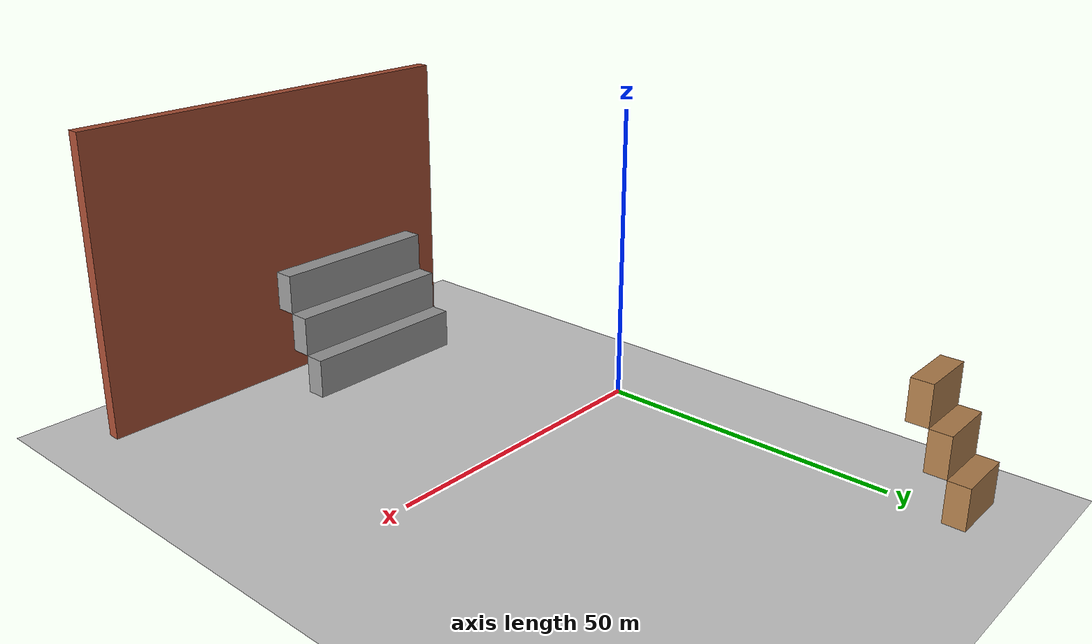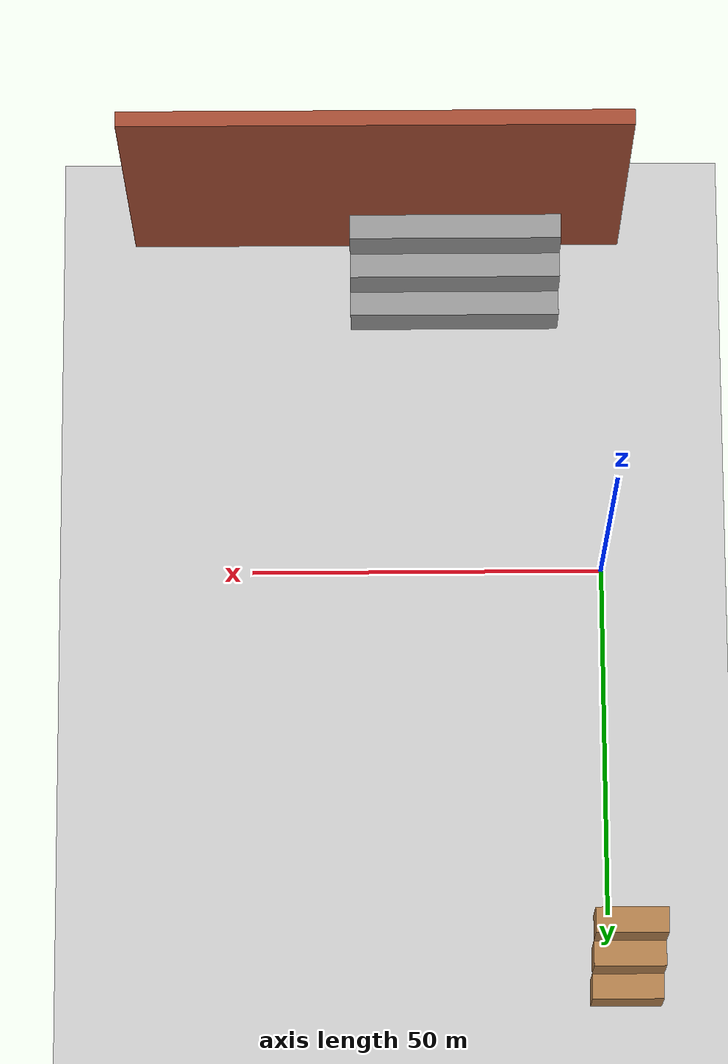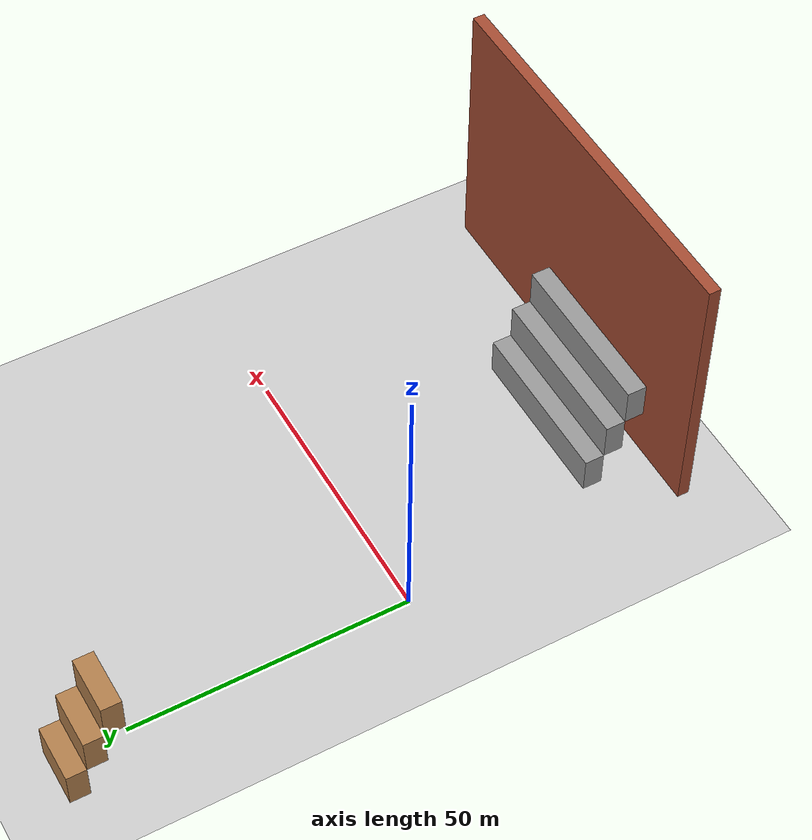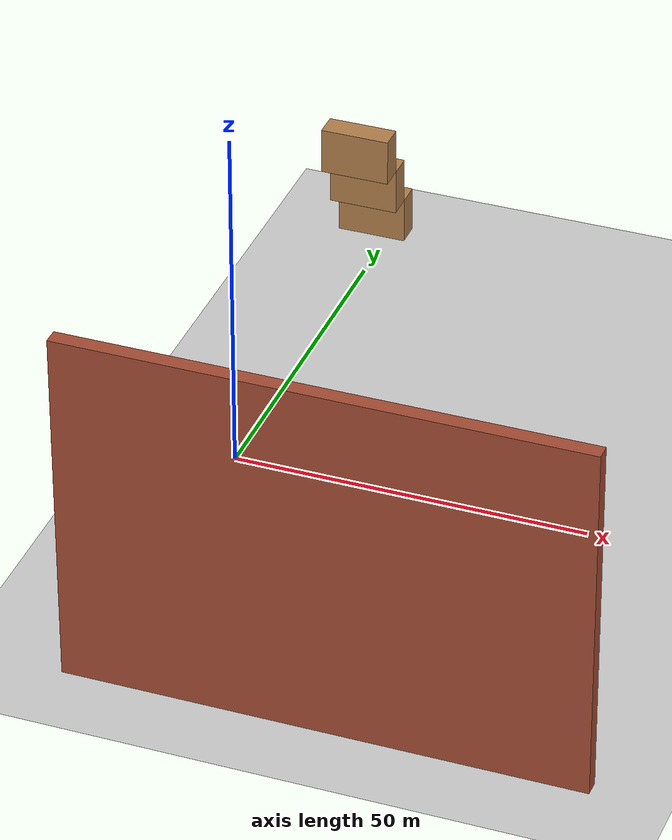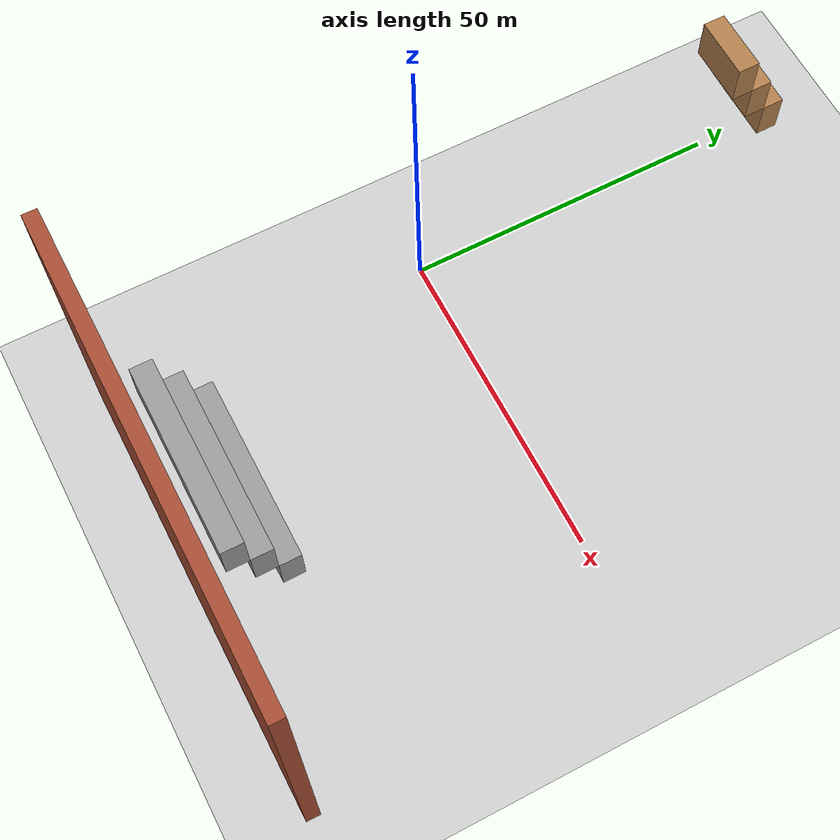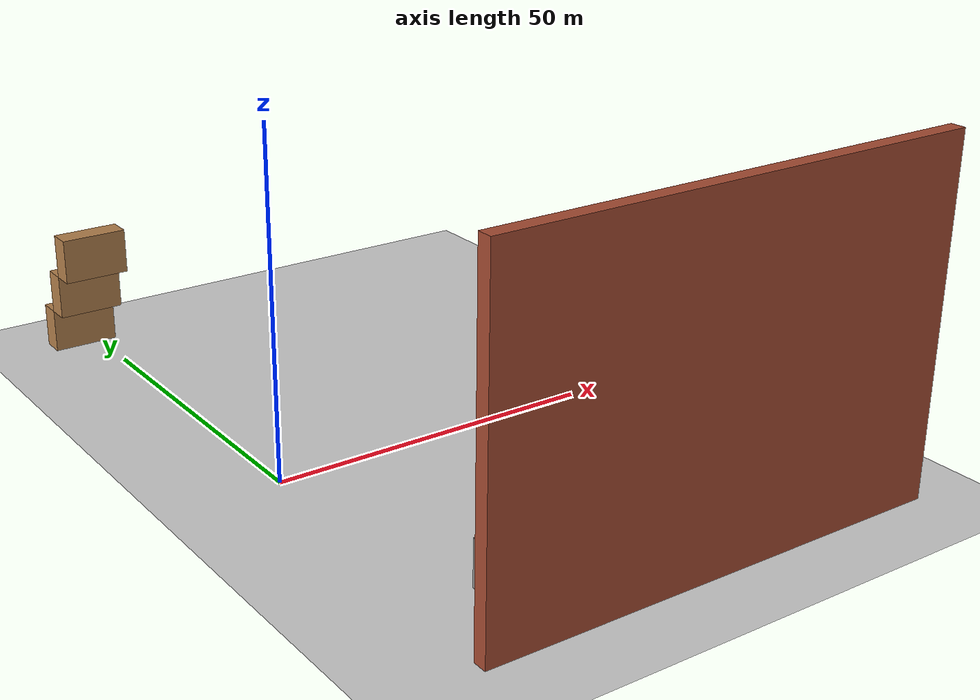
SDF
<sdf version="1.6">
 <world name="default">
  <model name="ground_plane">
   <static>1</static>
   <link name="link">
    <collision name="collision">
     <geometry><plane><normal>0 0 1</normal><size>100 100</size></plane></geometry>
     <surface><friction><ode><mu>100</mu><mu2>50</mu2></ode></friction></surface>
    </collision>
    <visual name="visual">
     <cast_shadows>0</cast_shadows>
     <geometry><plane><normal>0 0 1</normal><size>100 100</size></plane></geometry>
     <material>
      <script><uri>file://media/materials/scripts/gazebo.material</uri><name>Gazebo/Grey</name></script>
     </material>
    </visual>
   </link>
  </model>
  <light name="sun" type="directional">
   <pose>0 0 10 0 -0 0</pose>
   <diffuse>0.8 0.8 0.8 1</diffuse>
   <specular>0.2 0.2 0.2 1</specular>
   <attenuation>
    <range>1000</range>
    <constant>0.9</constant>
    <linear>0.01</linear>
    <quadratic>0.001</quadratic>
   </attenuation>
   <direction>-0.5 0.1 -0.9</direction>
  </light>
  <physics name="default_physics" default="0" type="ode">
   <max_contacts>100</max_contacts>
   <max_step_size>0.01</max_step_size>
   <ode>
    <solver>
     <iters>50</iters>
     <type>quick</type>
     <sor>1.3</sor>
     <use_dynamic_moi_rescaling>0</use_dynamic_moi_rescaling>
    </solver>
    <constraints>
     <cfm>0</cfm>
     <erp>0.2</erp>
     <contact_max_correcting_vel>100</contact_max_correcting_vel>
     <contact_surface_layer>0.001</contact_surface_layer>
    </constraints>
   </ode>
   <real_time_factor>1</real_time_factor>
   <real_time_update_rate>1000</real_time_update_rate>
  </physics>
  <gravity>0 0 -9.8</gravity>
  <magnetic_field>6e-06 2.3e-05 -4.2e-05</magnetic_field>
  <atmosphere type="adiabatic"/>
  <scene><ambient>0.4 0.4 0.4 1</ambient><background>0.7 0.7 0.7 1</background><shadows>1</shadows></scene>
  <spherical_coordinates>
   <surface_model>EARTH_WGS84</surface_model>
   <latitude_deg>0</latitude_deg>
   <longitude_deg>0</longitude_deg>
   <elevation>0</elevation>
   <heading_deg>0</heading_deg>
  </spherical_coordinates>
  <model name="Untitled_0">
   <pose>32.025 -50.59 0 0 -0 0</pose>
   <link name="Wall_0">
    <collision name="Wall_0_Collision">
     <geometry><box><size>70.5 2.15 50.5</size></box></geometry>
     <pose>0 0 25.25 0 -0 0</pose>
    </collision>
    <visual name="Wall_0_Visual">
     <pose>0 0 25.25 0 -0 0</pose>
     <geometry><box><size>70.5 2.15 50.5</size></box></geometry>
     <material>
      <script><uri>file://media/materials/scripts/gazebo.material</uri><name>Gazebo/Bricks</name></script>
      <ambient>1 1 1 1</ambient>
     </material>
     <meta><layer>0</layer></meta>
    </visual>
   </link>
   <static>1</static>
  </model>
  <model name="Untitled">
   <pose>14.1978 7.89194 0 0 -0 0</pose>
   <link name="Stairs_1">
    <visual name="Stairs_1_Visual_0">
     <pose>6.60929 -46.2749 3.41667 0 -0 0</pose>
     <geometry><box><size>30 3.5 6.83333</size></box></geometry>
     <material>
      <script><uri>file://media/materials/scripts/gazebo.material</uri><name>Gazebo/Grey</name></script>
      <ambient>1 1 1 1</ambient>
     </material>
     <meta><layer>0</layer></meta>
    </visual>
    <collision name="Stairs_1_Collision_0">
     <geometry><box><size>30 3.5 6.83333</size></box></geometry>
     <pose>6.60929 -46.2749 3.41667 0 -0 0</pose>
    </collision>
    <visual name="Stairs_1_Visual_1">
     <pose>6.60929 -49.7749 10.25 0 -0 0</pose>
     <geometry><box><size>30 3.5 6.83333</size></box></geometry>
     <material>
      <script><uri>file://media/materials/scripts/gazebo.material</uri><name>Gazebo/Grey</name></script>
      <ambient>1 1 1 1</ambient>
     </material>
     <meta><layer>0</layer></meta>
    </visual>
    <collision name="Stairs_1_Collision_1">
     <geometry><box><size>30 3.5 6.83333</size></box></geometry>
     <pose>6.60929 -49.7749 10.25 0 -0 0</pose>
    </collision>
    <visual name="Stairs_1_Visual_2">
     <pose>6.60929 -53.2749 17.0833 0 -0 0</pose>
     <geometry><box><size>30 3.5 6.83333</size></box></geometry>
     <material>
      <script><uri>file://media/materials/scripts/gazebo.material</uri><name>Gazebo/Grey</name></script>
      <ambient>1 1 1 1</ambient>
     </material>
     <meta><layer>0</layer></meta>
    </visual>
    <collision name="Stairs_1_Collision_2">
     <geometry><box><size>30 3.5 6.83333</size></box></geometry>
     <pose>6.60929 -53.2749 17.0833 0 -0 0</pose>
    </collision>
   </link>
   <link name="Stairs_3">
    <visual name="Stairs_3_Visual_0">
     <pose>-16.6093 53.2749 3.41667 0 -0 0</pose>
     <geometry><box><size>10 3.5 6.83333</size></box></geometry>
     <material>
      <script><uri>file://media/materials/scripts/gazebo.material</uri><name>Gazebo/Wood</name></script>
      <ambient>0.760784 0.662745 0.627451 1</ambient>
     </material>
     <meta><layer>0</layer></meta>
    </visual>
    <collision name="Stairs_3_Collision_0">
     <geometry><box><size>10 3.5 6.83333</size></box></geometry>
     <pose>-16.6093 53.2749 3.41667 0 -0 0</pose>
    </collision>
    <visual name="Stairs_3_Visual_1">
     <pose>-16.6093 49.7749 10.25 0 -0 0</pose>
     <geometry><box><size>10 3.5 6.83333</size></box></geometry>
     <material>
      <script><uri>file://media/materials/scripts/gazebo.material</uri><name>Gazebo/Wood</name></script>
      <ambient>0.760784 0.662745 0.627451 1</ambient>
     </material>
     <meta><layer>0</layer></meta>
    </visual>
    <collision name="Stairs_3_Collision_1">
     <geometry><box><size>10 3.5 6.83333</size></box></geometry>
     <pose>-16.6093 49.7749 10.25 0 -0 0</pose>
    </collision>
    <visual name="Stairs_3_Visual_2">
     <pose>-16.6093 46.2749 17.0833 0 -0 0</pose>
     <geometry><box><size>10 3.5 6.83333</size></box></geometry>
     <material>
      <script><uri>file://media/materials/scripts/gazebo.material</uri><name>Gazebo/Wood</name></script>
      <ambient>0.760784 0.662745 0.627451 1</ambient>
     </material>
     <meta><layer>0</layer></meta>
    </visual>
    <collision name="Stairs_3_Collision_2">
     <geometry><box><size>10 3.5 6.83333</size></box></geometry>
     <pose>-16.6093 46.2749 17.0833 0 -0 0</pose>
    </collision>
   </link>
   <static>1</static>
  </model>
 </world>
</sdf>
